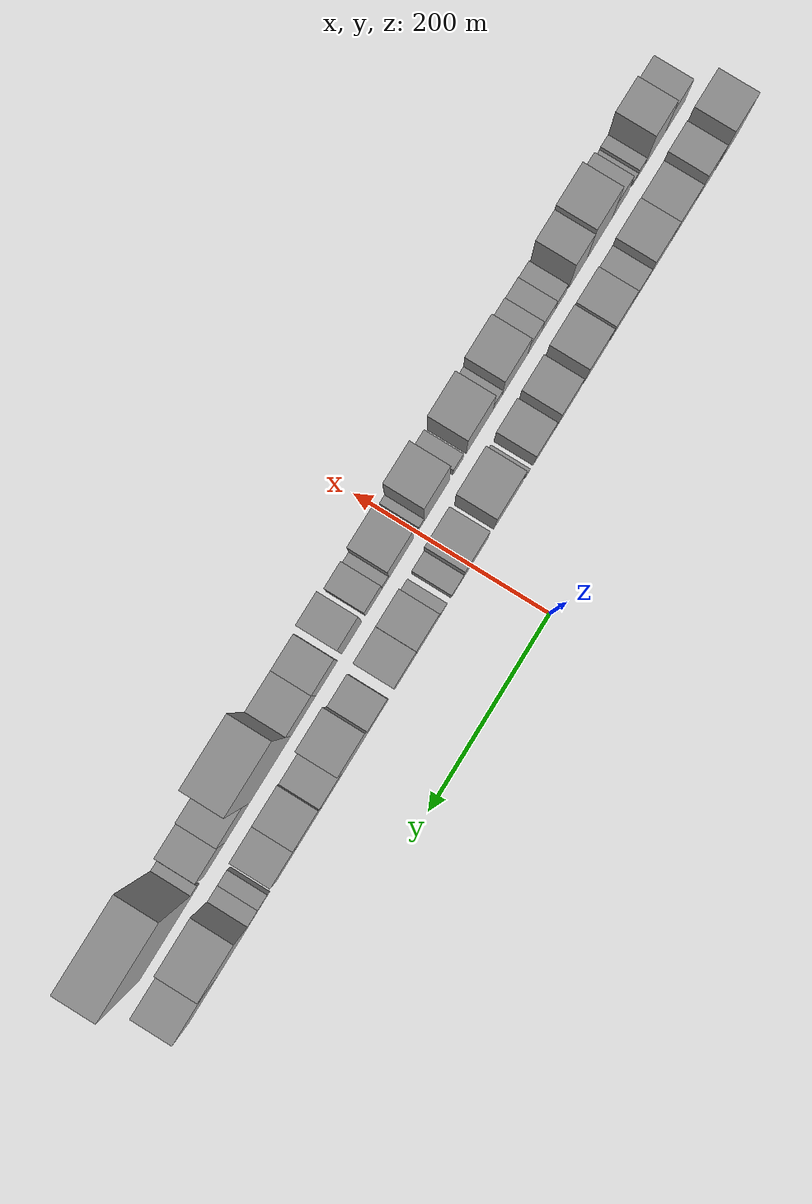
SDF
<sdf version="1.6">
 <world name="default">
  <scene>
   <sky><clouds><speed>12</speed></clouds></sky>
   <ambient>0.4 0.4 0.4 1</ambient>
   <background>0.7 0.7 0.7 1</background>
   <shadows>1</shadows>
  </scene>
  <gravity>0 0 -9.8066</gravity>
  <magnetic_field>6e-06 2.3e-05 -4.2e-05</magnetic_field>
  <physics default="0" name="default_physics" type="ode">
   <ode>
    <solver>
     <type>quick</type>
     <iters>10</iters>
     <sor>1.0</sor>
     <use_dynamic_moi_rescaling>0</use_dynamic_moi_rescaling>
    </solver>
    <constraints>
     <cfm>0</cfm>
     <erp>0.2</erp>
     <contact_max_correcting_vel>100</contact_max_correcting_vel>
     <contact_surface_layer>0.001</contact_surface_layer>
    </constraints>
   </ode>
   <max_step_size>0.004</max_step_size>
   <real_time_factor>1</real_time_factor>
   <real_time_update_rate>250</real_time_update_rate>
  </physics>
  <light name="sun" type="directional">
   <pose>0 0 10 0 0 0</pose>
   <diffuse>0.8 0.8 0.8 1</diffuse>
   <specular>0.2 0.2 0.2 1</specular>
   <attenuation>
    <range>1000</range>
    <constant>0.9</constant>
    <linear>0.01</linear>
    <quadratic>0.001</quadratic>
   </attenuation>
   <direction>-0.5 0.1 -0.9</direction>
  </light>
  <model name="building_1">
   <static>1</static>
   <pose>100.0000 -430.5518 0 0.000000 0.000000 0.000000</pose>
   <link name="link">
    <pose>0 0 58.50 0 0 0</pose>
    <collision name="collision"><geometry><box><size>40.0000 38.8965 117.0000</size></box></geometry></collision>
    <visual name="visual">
     <cast_shadows>0</cast_shadows>
     <geometry><box><size>40.0000 38.8965 117.0000</size></box></geometry>
     <material>
      <script>
       <uri>model://grey_wall/materials/scripts</uri>
       <uri>model://grey_wall/materials/textures</uri>
       <name>vrc/grey_wall</name>
      </script>
     </material>
    </visual>
   </link>
  </model>
  <model name="building_2">
   <static>1</static>
   <pose>100.0000 -390.5887 0 0.000000 0.000000 0.000000</pose>
   <link name="link">
    <pose>0 0 46.50 0 0 0</pose>
    <collision name="collision"><geometry><box><size>40.0000 31.0297 93.0000</size></box></geometry></collision>
    <visual name="visual">
     <cast_shadows>0</cast_shadows>
     <geometry><box><size>40.0000 31.0297 93.0000</size></box></geometry>
     <material>
      <script>
       <uri>model://grey_wall/materials/scripts</uri>
       <uri>model://grey_wall/materials/textures</uri>
       <name>vrc/grey_wall</name>
      </script>
     </material>
    </visual>
   </link>
  </model>
  <model name="building_3">
   <static>1</static>
   <pose>100.0000 -355.3062 0 0.000000 0.000000 0.000000</pose>
   <link name="link">
    <pose>0 0 33.00 0 0 0</pose>
    <collision name="collision"><geometry><box><size>40.0000 39.5352 66.0000</size></box></geometry></collision>
    <visual name="visual">
     <cast_shadows>0</cast_shadows>
     <geometry><box><size>40.0000 39.5352 66.0000</size></box></geometry>
     <material>
      <script>
       <uri>model://grey_wall/materials/scripts</uri>
       <uri>model://grey_wall/materials/textures</uri>
       <name>vrc/grey_wall</name>
      </script>
     </material>
    </visual>
   </link>
  </model>
  <model name="building_4">
   <static>1</static>
   <pose>100.0000 -315.1761 0 0.000000 0.000000 0.000000</pose>
   <link name="link">
    <pose>0 0 36.00 0 0 0</pose>
    <collision name="collision"><geometry><box><size>40.0000 40.7250 72.0000</size></box></geometry></collision>
    <visual name="visual">
     <cast_shadows>0</cast_shadows>
     <geometry><box><size>40.0000 40.7250 72.0000</size></box></geometry>
     <material>
      <script>
       <uri>model://grey_wall/materials/scripts</uri>
       <uri>model://grey_wall/materials/textures</uri>
       <name>vrc/grey_wall</name>
      </script>
     </material>
    </visual>
   </link>
  </model>
  <model name="building_5">
   <static>1</static>
   <pose>100.0000 -281.6589 0 0.000000 0.000000 0.000000</pose>
   <link name="link">
    <pose>0 0 22.50 0 0 0</pose>
    <collision name="collision"><geometry><box><size>40.0000 26.3094 45.0000</size></box></geometry></collision>
    <visual name="visual">
     <cast_shadows>0</cast_shadows>
     <geometry><box><size>40.0000 26.3094 45.0000</size></box></geometry>
     <material>
      <script>
       <uri>model://grey_wall/materials/scripts</uri>
       <uri>model://grey_wall/materials/textures</uri>
       <name>vrc/grey_wall</name>
      </script>
     </material>
    </visual>
   </link>
  </model>
  <model name="building_6">
   <static>1</static>
   <pose>100.0000 -250.3222 0 0.000000 0.000000 0.000000</pose>
   <link name="link">
    <pose>0 0 31.50 0 0 0</pose>
    <collision name="collision"><geometry><box><size>40.0000 36.3640 63.0000</size></box></geometry></collision>
    <visual name="visual">
     <cast_shadows>0</cast_shadows>
     <geometry><box><size>40.0000 36.3640 63.0000</size></box></geometry>
     <material>
      <script>
       <uri>model://grey_wall/materials/scripts</uri>
       <uri>model://grey_wall/materials/textures</uri>
       <name>vrc/grey_wall</name>
      </script>
     </material>
    </visual>
   </link>
  </model>
  <model name="building_7">
   <static>1</static>
   <pose>100.0000 -207.7540 0 0.000000 0.000000 0.000000</pose>
   <link name="link">
    <pose>0 0 36.00 0 0 0</pose>
    <collision name="collision"><geometry><box><size>40.0000 40.7725 72.0000</size></box></geometry></collision>
    <visual name="visual">
     <cast_shadows>0</cast_shadows>
     <geometry><box><size>40.0000 40.7725 72.0000</size></box></geometry>
     <material>
      <script>
       <uri>model://grey_wall/materials/scripts</uri>
       <uri>model://grey_wall/materials/textures</uri>
       <name>vrc/grey_wall</name>
      </script>
     </material>
    </visual>
   </link>
  </model>
  <model name="building_8">
   <static>1</static>
   <pose>100.0000 -161.3711 0 0.000000 0.000000 0.000000</pose>
   <link name="link">
    <pose>0 0 33.00 0 0 0</pose>
    <collision name="collision"><geometry><box><size>40.0000 35.9933 66.0000</size></box></geometry></collision>
    <visual name="visual">
     <cast_shadows>0</cast_shadows>
     <geometry><box><size>40.0000 35.9933 66.0000</size></box></geometry>
     <material>
      <script>
       <uri>model://grey_wall/materials/scripts</uri>
       <uri>model://grey_wall/materials/textures</uri>
       <name>vrc/grey_wall</name>
      </script>
     </material>
    </visual>
   </link>
  </model>
  <model name="building_9">
   <static>1</static>
   <pose>100.0000 -140.2287 0 0.000000 0.000000 0.000000</pose>
   <link name="link">
    <pose>0 0 7.50 0 0 0</pose>
    <collision name="collision"><geometry><box><size>40.0000 6.2915 15.0000</size></box></geometry></collision>
    <visual name="visual">
     <cast_shadows>0</cast_shadows>
     <geometry><box><size>40.0000 6.2915 15.0000</size></box></geometry>
     <material>
      <script>
       <uri>model://grey_wall/materials/scripts</uri>
       <uri>model://grey_wall/materials/textures</uri>
       <name>vrc/grey_wall</name>
      </script>
     </material>
    </visual>
   </link>
  </model>
  <model name="building_10">
   <static>1</static>
   <pose>100.0000 -119.8981 0 0.000000 0.000000 0.000000</pose>
   <link name="link">
    <pose>0 0 30.00 0 0 0</pose>
    <collision name="collision"><geometry><box><size>40.0000 34.3697 60.0000</size></box></geometry></collision>
    <visual name="visual">
     <cast_shadows>0</cast_shadows>
     <geometry><box><size>40.0000 34.3697 60.0000</size></box></geometry>
     <material>
      <script>
       <uri>model://grey_wall/materials/scripts</uri>
       <uri>model://grey_wall/materials/textures</uri>
       <name>vrc/grey_wall</name>
      </script>
     </material>
    </visual>
   </link>
  </model>
  <model name="building_11">
   <static>1</static>
   <pose>100.0000 -92.5757 0 0.000000 0.000000 0.000000</pose>
   <link name="link">
    <pose>0 0 9.00 0 0 0</pose>
    <collision name="collision"><geometry><box><size>40.0000 8.2751 18.0000</size></box></geometry></collision>
    <visual name="visual">
     <cast_shadows>0</cast_shadows>
     <geometry><box><size>40.0000 8.2751 18.0000</size></box></geometry>
     <material>
      <script>
       <uri>model://grey_wall/materials/scripts</uri>
       <uri>model://grey_wall/materials/textures</uri>
       <name>vrc/grey_wall</name>
      </script>
     </material>
    </visual>
   </link>
  </model>
  <model name="building_12">
   <static>1</static>
   <pose>100.0000 -60.7736 0 0.000000 0.000000 0.000000</pose>
   <link name="link">
    <pose>0 0 45.00 0 0 0</pose>
    <collision name="collision"><geometry><box><size>40.0000 47.3291 90.0000</size></box></geometry></collision>
    <visual name="visual">
     <cast_shadows>0</cast_shadows>
     <geometry><box><size>40.0000 47.3291 90.0000</size></box></geometry>
     <material>
      <script>
       <uri>model://grey_wall/materials/scripts</uri>
       <uri>model://grey_wall/materials/textures</uri>
       <name>vrc/grey_wall</name>
      </script>
     </material>
    </visual>
   </link>
  </model>
  <model name="building_13">
   <static>1</static>
   <pose>100.0000 -7.1644 0 0.000000 0.000000 0.000000</pose>
   <link name="link">
    <pose>0 0 37.50 0 0 0</pose>
    <collision name="collision"><geometry><box><size>40.0000 39.8892 75.0000</size></box></geometry></collision>
    <visual name="visual">
     <cast_shadows>0</cast_shadows>
     <geometry><box><size>40.0000 39.8892 75.0000</size></box></geometry>
     <material>
      <script>
       <uri>model://grey_wall/materials/scripts</uri>
       <uri>model://grey_wall/materials/textures</uri>
       <name>vrc/grey_wall</name>
      </script>
     </material>
    </visual>
   </link>
  </model>
  <model name="building_14">
   <static>1</static>
   <pose>100.0000 23.0275 0 0.000000 0.000000 0.000000</pose>
   <link name="link">
    <pose>0 0 18.00 0 0 0</pose>
    <collision name="collision"><geometry><box><size>40.0000 20.4946 36.0000</size></box></geometry></collision>
    <visual name="visual">
     <cast_shadows>0</cast_shadows>
     <geometry><box><size>40.0000 20.4946 36.0000</size></box></geometry>
     <material>
      <script>
       <uri>model://grey_wall/materials/scripts</uri>
       <uri>model://grey_wall/materials/textures</uri>
       <name>vrc/grey_wall</name>
      </script>
     </material>
    </visual>
   </link>
  </model>
  <model name="building_15">
   <static>1</static>
   <pose>100.0000 46.6886 0 0.000000 0.000000 0.000000</pose>
   <link name="link">
    <pose>0 0 13.50 0 0 0</pose>
    <collision name="collision"><geometry><box><size>40.0000 12.8277 27.0000</size></box></geometry></collision>
    <visual name="visual">
     <cast_shadows>0</cast_shadows>
     <geometry><box><size>40.0000 12.8277 27.0000</size></box></geometry>
     <material>
      <script>
       <uri>model://grey_wall/materials/scripts</uri>
       <uri>model://grey_wall/materials/textures</uri>
       <name>vrc/grey_wall</name>
      </script>
     </material>
    </visual>
   </link>
  </model>
  <model name="building_16">
   <static>1</static>
   <pose>100.0000 71.5648 0 0.000000 0.000000 0.000000</pose>
   <link name="link">
    <pose>0 0 34.50 0 0 0</pose>
    <collision name="collision"><geometry><box><size>40.0000 36.9246 69.0000</size></box></geometry></collision>
    <visual name="visual">
     <cast_shadows>0</cast_shadows>
     <geometry><box><size>40.0000 36.9246 69.0000</size></box></geometry>
     <material>
      <script>
       <uri>model://grey_wall/materials/scripts</uri>
       <uri>model://grey_wall/materials/textures</uri>
       <name>vrc/grey_wall</name>
      </script>
     </material>
    </visual>
   </link>
  </model>
  <model name="building_17">
   <static>1</static>
   <pose>100.0000 108.0076 0 0.000000 0.000000 0.000000</pose>
   <link name="link">
    <pose>0 0 33.00 0 0 0</pose>
    <collision name="collision"><geometry><box><size>40.0000 35.9610 66.0000</size></box></geometry></collision>
    <visual name="visual">
     <cast_shadows>0</cast_shadows>
     <geometry><box><size>40.0000 35.9610 66.0000</size></box></geometry>
     <material>
      <script>
       <uri>model://grey_wall/materials/scripts</uri>
       <uri>model://grey_wall/materials/textures</uri>
       <name>vrc/grey_wall</name>
      </script>
     </material>
    </visual>
   </link>
  </model>
  <model name="building_18">
   <static>1</static>
   <pose>100.0000 152.0862 0 0.000000 0.000000 0.000000</pose>
   <link name="link">
    <pose>0 0 27.00 0 0 0</pose>
    <collision name="collision"><geometry><box><size>40.0000 32.1962 54.0000</size></box></geometry></collision>
    <visual name="visual">
     <cast_shadows>0</cast_shadows>
     <geometry><box><size>40.0000 32.1962 54.0000</size></box></geometry>
     <material>
      <script>
       <uri>model://grey_wall/materials/scripts</uri>
       <uri>model://grey_wall/materials/textures</uri>
       <name>vrc/grey_wall</name>
      </script>
     </material>
    </visual>
   </link>
  </model>
  <model name="building_19">
   <static>1</static>
   <pose>100.0000 189.0848 0 0.000000 0.000000 0.000000</pose>
   <link name="link">
    <pose>0 0 61.50 0 0 0</pose>
    <collision name="collision"><geometry><box><size>40.0000 41.8011 123.0000</size></box></geometry></collision>
    <visual name="visual">
     <cast_shadows>0</cast_shadows>
     <geometry><box><size>40.0000 41.8011 123.0000</size></box></geometry>
     <material>
      <script>
       <uri>model://grey_wall/materials/scripts</uri>
       <uri>model://grey_wall/materials/textures</uri>
       <name>vrc/grey_wall</name>
      </script>
     </material>
    </visual>
   </link>
  </model>
  <model name="building_20">
   <static>1</static>
   <pose>100.0000 226.8184 0 0.000000 0.000000 0.000000</pose>
   <link name="link">
    <pose>0 0 28.50 0 0 0</pose>
    <collision name="collision"><geometry><box><size>40.0000 33.6662 57.0000</size></box></geometry></collision>
    <visual name="visual">
     <cast_shadows>0</cast_shadows>
     <geometry><box><size>40.0000 33.6662 57.0000</size></box></geometry>
     <material>
      <script>
       <uri>model://grey_wall/materials/scripts</uri>
       <uri>model://grey_wall/materials/textures</uri>
       <name>vrc/grey_wall</name>
      </script>
     </material>
    </visual>
   </link>
  </model>
  <model name="building_21">
   <static>1</static>
   <pose>100.0000 263.5719 0 0.000000 0.000000 0.000000</pose>
   <link name="link">
    <pose>0 0 36.00 0 0 0</pose>
    <collision name="collision"><geometry><box><size>40.0000 39.8407 72.0000</size></box></geometry></collision>
    <visual name="visual">
     <cast_shadows>0</cast_shadows>
     <geometry><box><size>40.0000 39.8407 72.0000</size></box></geometry>
     <material>
      <script>
       <uri>model://grey_wall/materials/scripts</uri>
       <uri>model://grey_wall/materials/textures</uri>
       <name>vrc/grey_wall</name>
      </script>
     </material>
    </visual>
   </link>
  </model>
  <model name="building_22">
   <static>1</static>
   <pose>100.0000 301.2652 0 0.000000 0.000000 0.000000</pose>
   <link name="link">
    <pose>0 0 34.50 0 0 0</pose>
    <collision name="collision"><geometry><box><size>40.0000 35.5461 69.0000</size></box></geometry></collision>
    <visual name="visual">
     <cast_shadows>0</cast_shadows>
     <geometry><box><size>40.0000 35.5461 69.0000</size></box></geometry>
     <material>
      <script>
       <uri>model://grey_wall/materials/scripts</uri>
       <uri>model://grey_wall/materials/textures</uri>
       <name>vrc/grey_wall</name>
      </script>
     </material>
    </visual>
   </link>
  </model>
  <model name="building_23">
   <static>1</static>
   <pose>100.0000 336.7162 0 0.000000 0.000000 0.000000</pose>
   <link name="link">
    <pose>0 0 15.00 0 0 0</pose>
    <collision name="collision"><geometry><box><size>40.0000 15.3558 30.0000</size></box></geometry></collision>
    <visual name="visual">
     <cast_shadows>0</cast_shadows>
     <geometry><box><size>40.0000 15.3558 30.0000</size></box></geometry>
     <material>
      <script>
       <uri>model://grey_wall/materials/scripts</uri>
       <uri>model://grey_wall/materials/textures</uri>
       <name>vrc/grey_wall</name>
      </script>
     </material>
    </visual>
   </link>
  </model>
  <model name="building_24">
   <static>1</static>
   <pose>100.0000 352.4193 0 0.000000 0.000000 0.000000</pose>
   <link name="link">
    <pose>0 0 15.00 0 0 0</pose>
    <collision name="collision"><geometry><box><size>40.0000 16.0504 30.0000</size></box></geometry></collision>
    <visual name="visual">
     <cast_shadows>0</cast_shadows>
     <geometry><box><size>40.0000 16.0504 30.0000</size></box></geometry>
     <material>
      <script>
       <uri>model://grey_wall/materials/scripts</uri>
       <uri>model://grey_wall/materials/textures</uri>
       <name>vrc/grey_wall</name>
      </script>
     </material>
    </visual>
   </link>
  </model>
  <model name="building_25">
   <static>1</static>
   <pose>100.0000 386.9694 0 0.000000 0.000000 0.000000</pose>
   <link name="link">
    <pose>0 0 75.00 0 0 0</pose>
    <collision name="collision"><geometry><box><size>40.0000 53.0498 150.0000</size></box></geometry></collision>
    <visual name="visual">
     <cast_shadows>0</cast_shadows>
     <geometry><box><size>40.0000 53.0498 150.0000</size></box></geometry>
     <material>
      <script>
       <uri>model://grey_wall/materials/scripts</uri>
       <uri>model://grey_wall/materials/textures</uri>
       <name>vrc/grey_wall</name>
      </script>
     </material>
    </visual>
   </link>
  </model>
  <model name="building_26">
   <static>1</static>
   <pose>100.0000 436.2001 0 0.000000 0.000000 0.000000</pose>
   <link name="link">
    <pose>0 0 57.00 0 0 0</pose>
    <collision name="collision"><geometry><box><size>40.0000 45.4117 114.0000</size></box></geometry></collision>
    <visual name="visual">
     <cast_shadows>0</cast_shadows>
     <geometry><box><size>40.0000 45.4117 114.0000</size></box></geometry>
     <material>
      <script>
       <uri>model://grey_wall/materials/scripts</uri>
       <uri>model://grey_wall/materials/textures</uri>
       <name>vrc/grey_wall</name>
      </script>
     </material>
    </visual>
   </link>
  </model>
  <model name="building_27">
   <static>1</static>
   <pose>155.0000 -433.5572 0 0.000000 0.000000 0.000000</pose>
   <link name="link">
    <pose>0 0 31.50 0 0 0</pose>
    <collision name="collision"><geometry><box><size>40.0000 32.8855 63.0000</size></box></geometry></collision>
    <visual name="visual">
     <cast_shadows>0</cast_shadows>
     <geometry><box><size>40.0000 32.8855 63.0000</size></box></geometry>
     <material>
      <script>
       <uri>model://grey_wall/materials/scripts</uri>
       <uri>model://grey_wall/materials/textures</uri>
       <name>vrc/grey_wall</name>
      </script>
     </material>
    </visual>
   </link>
  </model>
  <model name="building_28">
   <static>1</static>
   <pose>155.0000 -399.0424 0 0.000000 0.000000 0.000000</pose>
   <link name="link">
    <pose>0 0 46.50 0 0 0</pose>
    <collision name="collision"><geometry><box><size>40.0000 36.1441 93.0000</size></box></geometry></collision>
    <visual name="visual">
     <cast_shadows>0</cast_shadows>
     <geometry><box><size>40.0000 36.1441 93.0000</size></box></geometry>
     <material>
      <script>
       <uri>model://grey_wall/materials/scripts</uri>
       <uri>model://grey_wall/materials/textures</uri>
       <name>vrc/grey_wall</name>
      </script>
     </material>
    </visual>
   </link>
  </model>
  <model name="building_29">
   <static>1</static>
   <pose>155.0000 -374.6054 0 0.000000 0.000000 0.000000</pose>
   <link name="link">
    <pose>0 0 13.50 0 0 0</pose>
    <collision name="collision"><geometry><box><size>40.0000 12.7298 27.0000</size></box></geometry></collision>
    <visual name="visual">
     <cast_shadows>0</cast_shadows>
     <geometry><box><size>40.0000 12.7298 27.0000</size></box></geometry>
     <material>
      <script>
       <uri>model://grey_wall/materials/scripts</uri>
       <uri>model://grey_wall/materials/textures</uri>
       <name>vrc/grey_wall</name>
      </script>
     </material>
    </visual>
   </link>
  </model>
  <model name="building_30">
   <static>1</static>
   <pose>155.0000 -363.9505 0 0.000000 0.000000 0.000000</pose>
   <link name="link">
    <pose>0 0 9.00 0 0 0</pose>
    <collision name="collision"><geometry><box><size>40.0000 8.5799 18.0000</size></box></geometry></collision>
    <visual name="visual">
     <cast_shadows>0</cast_shadows>
     <geometry><box><size>40.0000 8.5799 18.0000</size></box></geometry>
     <material>
      <script>
       <uri>model://grey_wall/materials/scripts</uri>
       <uri>model://grey_wall/materials/textures</uri>
       <name>vrc/grey_wall</name>
      </script>
     </material>
    </visual>
   </link>
  </model>
  <model name="building_31">
   <static>1</static>
   <pose>155.0000 -339.7884 0 0.000000 0.000000 0.000000</pose>
   <link name="link">
    <pose>0 0 27.00 0 0 0</pose>
    <collision name="collision"><geometry><box><size>40.0000 27.7443 54.0000</size></box></geometry></collision>
    <visual name="visual">
     <cast_shadows>0</cast_shadows>
     <geometry><box><size>40.0000 27.7443 54.0000</size></box></geometry>
     <material>
      <script>
       <uri>model://grey_wall/materials/scripts</uri>
       <uri>model://grey_wall/materials/textures</uri>
       <name>vrc/grey_wall</name>
      </script>
     </material>
    </visual>
   </link>
  </model>
  <model name="building_32">
   <static>1</static>
   <pose>155.0000 -304.5510 0 0.000000 0.000000 0.000000</pose>
   <link name="link">
    <pose>0 0 54.00 0 0 0</pose>
    <collision name="collision"><geometry><box><size>40.0000 42.7304 108.0000</size></box></geometry></collision>
    <visual name="visual">
     <cast_shadows>0</cast_shadows>
     <geometry><box><size>40.0000 42.7304 108.0000</size></box></geometry>
     <material>
      <script>
       <uri>model://grey_wall/materials/scripts</uri>
       <uri>model://grey_wall/materials/textures</uri>
       <name>vrc/grey_wall</name>
      </script>
     </material>
    </visual>
   </link>
  </model>
  <model name="building_33">
   <static>1</static>
   <pose>155.0000 -267.7677 0 0.000000 0.000000 0.000000</pose>
   <link name="link">
    <pose>0 0 46.50 0 0 0</pose>
    <collision name="collision"><geometry><box><size>40.0000 30.8363 93.0000</size></box></geometry></collision>
    <visual name="visual">
     <cast_shadows>0</cast_shadows>
     <geometry><box><size>40.0000 30.8363 93.0000</size></box></geometry>
     <material>
      <script>
       <uri>model://grey_wall/materials/scripts</uri>
       <uri>model://grey_wall/materials/textures</uri>
       <name>vrc/grey_wall</name>
      </script>
     </material>
    </visual>
   </link>
  </model>
  <model name="building_34">
   <static>1</static>
   <pose>155.0000 -239.1030 0 0.000000 0.000000 0.000000</pose>
   <link name="link">
    <pose>0 0 16.50 0 0 0</pose>
    <collision name="collision"><geometry><box><size>40.0000 18.4930 33.0000</size></box></geometry></collision>
    <visual name="visual">
     <cast_shadows>0</cast_shadows>
     <geometry><box><size>40.0000 18.4930 33.0000</size></box></geometry>
     <material>
      <script>
       <uri>model://grey_wall/materials/scripts</uri>
       <uri>model://grey_wall/materials/textures</uri>
       <name>vrc/grey_wall</name>
      </script>
     </material>
    </visual>
   </link>
  </model>
  <model name="building_35">
   <static>1</static>
   <pose>155.0000 -218.6538 0 0.000000 0.000000 0.000000</pose>
   <link name="link">
    <pose>0 0 19.50 0 0 0</pose>
    <collision name="collision"><geometry><box><size>40.0000 22.4055 39.0000</size></box></geometry></collision>
    <visual name="visual">
     <cast_shadows>0</cast_shadows>
     <geometry><box><size>40.0000 22.4055 39.0000</size></box></geometry>
     <material>
      <script>
       <uri>model://grey_wall/materials/scripts</uri>
       <uri>model://grey_wall/materials/textures</uri>
       <name>vrc/grey_wall</name>
      </script>
     </material>
    </visual>
   </link>
  </model>
  <model name="building_36">
   <static>1</static>
   <pose>155.0000 -195.7575 0 0.000000 0.000000 0.000000</pose>
   <link name="link">
    <pose>0 0 22.50 0 0 0</pose>
    <collision name="collision"><geometry><box><size>40.0000 23.3871 45.0000</size></box></geometry></collision>
    <visual name="visual">
     <cast_shadows>0</cast_shadows>
     <geometry><box><size>40.0000 23.3871 45.0000</size></box></geometry>
     <material>
      <script>
       <uri>model://grey_wall/materials/scripts</uri>
       <uri>model://grey_wall/materials/textures</uri>
       <name>vrc/grey_wall</name>
      </script>
     </material>
    </visual>
   </link>
  </model>
  <model name="building_37">
   <static>1</static>
   <pose>155.0000 -162.3110 0 0.000000 0.000000 0.000000</pose>
   <link name="link">
    <pose>0 0 37.50 0 0 0</pose>
    <collision name="collision"><geometry><box><size>40.0000 43.5059 75.0000</size></box></geometry></collision>
    <visual name="visual">
     <cast_shadows>0</cast_shadows>
     <geometry><box><size>40.0000 43.5059 75.0000</size></box></geometry>
     <material>
      <script>
       <uri>model://grey_wall/materials/scripts</uri>
       <uri>model://grey_wall/materials/textures</uri>
       <name>vrc/grey_wall</name>
      </script>
     </material>
    </visual>
   </link>
  </model>
  <model name="building_38">
   <static>1</static>
   <pose>155.0000 -133.0314 0 0.000000 0.000000 0.000000</pose>
   <link name="link">
    <pose>0 0 15.00 0 0 0</pose>
    <collision name="collision"><geometry><box><size>40.0000 15.0533 30.0000</size></box></geometry></collision>
    <visual name="visual">
     <cast_shadows>0</cast_shadows>
     <geometry><box><size>40.0000 15.0533 30.0000</size></box></geometry>
     <material>
      <script>
       <uri>model://grey_wall/materials/scripts</uri>
       <uri>model://grey_wall/materials/textures</uri>
       <name>vrc/grey_wall</name>
      </script>
     </material>
    </visual>
   </link>
  </model>
  <model name="building_39">
   <static>1</static>
   <pose>155.0000 -103.1621 0 0.000000 0.000000 0.000000</pose>
   <link name="link">
    <pose>0 0 42.00 0 0 0</pose>
    <collision name="collision"><geometry><box><size>40.0000 44.6851 84.0000</size></box></geometry></collision>
    <visual name="visual">
     <cast_shadows>0</cast_shadows>
     <geometry><box><size>40.0000 44.6851 84.0000</size></box></geometry>
     <material>
      <script>
       <uri>model://grey_wall/materials/scripts</uri>
       <uri>model://grey_wall/materials/textures</uri>
       <name>vrc/grey_wall</name>
      </script>
     </material>
    </visual>
   </link>
  </model>
  <model name="building_40">
   <static>1</static>
   <pose>155.0000 -67.3736 0 0.000000 0.000000 0.000000</pose>
   <link name="link">
    <pose>0 0 16.50 0 0 0</pose>
    <collision name="collision"><geometry><box><size>40.0000 16.8920 33.0000</size></box></geometry></collision>
    <visual name="visual">
     <cast_shadows>0</cast_shadows>
     <geometry><box><size>40.0000 16.8920 33.0000</size></box></geometry>
     <material>
      <script>
       <uri>model://grey_wall/materials/scripts</uri>
       <uri>model://grey_wall/materials/textures</uri>
       <name>vrc/grey_wall</name>
      </script>
     </material>
    </visual>
   </link>
  </model>
  <model name="building_41">
   <static>1</static>
   <pose>155.0000 -32.0951 0 0.000000 0.000000 0.000000</pose>
   <link name="link">
    <pose>0 0 54.00 0 0 0</pose>
    <collision name="collision"><geometry><box><size>40.0000 41.6651 108.0000</size></box></geometry></collision>
    <visual name="visual">
     <cast_shadows>0</cast_shadows>
     <geometry><box><size>40.0000 41.6651 108.0000</size></box></geometry>
     <material>
      <script>
       <uri>model://grey_wall/materials/scripts</uri>
       <uri>model://grey_wall/materials/textures</uri>
       <name>vrc/grey_wall</name>
      </script>
     </material>
    </visual>
   </link>
  </model>
  <model name="building_42">
   <static>1</static>
   <pose>155.0000 -6.8594 0 0.000000 0.000000 0.000000</pose>
   <link name="link">
    <pose>0 0 10.50 0 0 0</pose>
    <collision name="collision"><geometry><box><size>40.0000 8.8063 21.0000</size></box></geometry></collision>
    <visual name="visual">
     <cast_shadows>0</cast_shadows>
     <geometry><box><size>40.0000 8.8063 21.0000</size></box></geometry>
     <material>
      <script>
       <uri>model://grey_wall/materials/scripts</uri>
       <uri>model://grey_wall/materials/textures</uri>
       <name>vrc/grey_wall</name>
      </script>
     </material>
    </visual>
   </link>
  </model>
  <model name="building_43">
   <static>1</static>
   <pose>155.0000 26.7637 0 0.000000 0.000000 0.000000</pose>
   <link name="link">
    <pose>0 0 36.00 0 0 0</pose>
    <collision name="collision"><geometry><box><size>40.0000 40.4399 72.0000</size></box></geometry></collision>
    <visual name="visual">
     <cast_shadows>0</cast_shadows>
     <geometry><box><size>40.0000 40.4399 72.0000</size></box></geometry>
     <material>
      <script>
       <uri>model://grey_wall/materials/scripts</uri>
       <uri>model://grey_wall/materials/textures</uri>
       <name>vrc/grey_wall</name>
      </script>
     </material>
    </visual>
   </link>
  </model>
  <model name="building_44">
   <static>1</static>
   <pose>155.0000 52.6036 0 0.000000 0.000000 0.000000</pose>
   <link name="link">
    <pose>0 0 12.00 0 0 0</pose>
    <collision name="collision"><geometry><box><size>40.0000 11.2398 24.0000</size></box></geometry></collision>
    <visual name="visual">
     <cast_shadows>0</cast_shadows>
     <geometry><box><size>40.0000 11.2398 24.0000</size></box></geometry>
     <material>
      <script>
       <uri>model://grey_wall/materials/scripts</uri>
       <uri>model://grey_wall/materials/textures</uri>
       <name>vrc/grey_wall</name>
      </script>
     </material>
    </visual>
   </link>
  </model>
  <model name="building_45">
   <static>1</static>
   <pose>155.0000 71.7972 0 0.000000 0.000000 0.000000</pose>
   <link name="link">
    <pose>0 0 24.00 0 0 0</pose>
    <collision name="collision"><geometry><box><size>40.0000 27.1474 48.0000</size></box></geometry></collision>
    <visual name="visual">
     <cast_shadows>0</cast_shadows>
     <geometry><box><size>40.0000 27.1474 48.0000</size></box></geometry>
     <material>
      <script>
       <uri>model://grey_wall/materials/scripts</uri>
       <uri>model://grey_wall/materials/textures</uri>
       <name>vrc/grey_wall</name>
      </script>
     </material>
    </visual>
   </link>
  </model>
  <model name="building_46">
   <static>1</static>
   <pose>155.0000 107.7338 0 0.000000 0.000000 0.000000</pose>
   <link name="link">
    <pose>0 0 49.50 0 0 0</pose>
    <collision name="collision"><geometry><box><size>40.0000 32.7256 99.0000</size></box></geometry></collision>
    <visual name="visual">
     <cast_shadows>0</cast_shadows>
     <geometry><box><size>40.0000 32.7256 99.0000</size></box></geometry>
     <material>
      <script>
       <uri>model://grey_wall/materials/scripts</uri>
       <uri>model://grey_wall/materials/textures</uri>
       <name>vrc/grey_wall</name>
      </script>
     </material>
    </visual>
   </link>
  </model>
  <model name="building_47">
   <static>1</static>
   <pose>155.0000 149.0191 0 0.000000 0.000000 0.000000</pose>
   <link name="link">
    <pose>0 0 34.50 0 0 0</pose>
    <collision name="collision"><geometry><box><size>40.0000 35.8450 69.0000</size></box></geometry></collision>
    <visual name="visual">
     <cast_shadows>0</cast_shadows>
     <geometry><box><size>40.0000 35.8450 69.0000</size></box></geometry>
     <material>
      <script>
       <uri>model://grey_wall/materials/scripts</uri>
       <uri>model://grey_wall/materials/textures</uri>
       <name>vrc/grey_wall</name>
      </script>
     </material>
    </visual>
   </link>
  </model>
  <model name="building_48">
   <static>1</static>
   <pose>155.0000 187.0254 0 0.000000 0.000000 0.000000</pose>
   <link name="link">
    <pose>0 0 34.50 0 0 0</pose>
    <collision name="collision"><geometry><box><size>40.0000 40.1676 69.0000</size></box></geometry></collision>
    <visual name="visual">
     <cast_shadows>0</cast_shadows>
     <geometry><box><size>40.0000 40.1676 69.0000</size></box></geometry>
     <material>
      <script>
       <uri>model://grey_wall/materials/scripts</uri>
       <uri>model://grey_wall/materials/textures</uri>
       <name>vrc/grey_wall</name>
      </script>
     </material>
    </visual>
   </link>
  </model>
  <model name="building_49">
   <static>1</static>
   <pose>155.0000 241.0025 0 0.000000 0.000000 0.000000</pose>
   <link name="link">
    <pose>0 0 108.00 0 0 0</pose>
    <collision name="collision"><geometry><box><size>40.0000 67.7867 216.0000</size></box></geometry></collision>
    <visual name="visual">
     <cast_shadows>0</cast_shadows>
     <geometry><box><size>40.0000 67.7867 216.0000</size></box></geometry>
     <material>
      <script>
       <uri>model://grey_wall/materials/scripts</uri>
       <uri>model://grey_wall/materials/textures</uri>
       <name>vrc/grey_wall</name>
      </script>
     </material>
    </visual>
   </link>
  </model>
  <model name="building_50">
   <static>1</static>
   <pose>155.0000 294.5876 0 0.000000 0.000000 0.000000</pose>
   <link name="link">
    <pose>0 0 36.00 0 0 0</pose>
    <collision name="collision"><geometry><box><size>40.0000 39.3835 72.0000</size></box></geometry></collision>
    <visual name="visual">
     <cast_shadows>0</cast_shadows>
     <geometry><box><size>40.0000 39.3835 72.0000</size></box></geometry>
     <material>
      <script>
       <uri>model://grey_wall/materials/scripts</uri>
       <uri>model://grey_wall/materials/textures</uri>
       <name>vrc/grey_wall</name>
      </script>
     </material>
    </visual>
   </link>
  </model>
  <model name="building_51">
   <static>1</static>
   <pose>155.0000 331.6645 0 0.000000 0.000000 0.000000</pose>
   <link name="link">
    <pose>0 0 31.50 0 0 0</pose>
    <collision name="collision"><geometry><box><size>40.0000 34.7703 63.0000</size></box></geometry></collision>
    <visual name="visual">
     <cast_shadows>0</cast_shadows>
     <geometry><box><size>40.0000 34.7703 63.0000</size></box></geometry>
     <material>
      <script>
       <uri>model://grey_wall/materials/scripts</uri>
       <uri>model://grey_wall/materials/textures</uri>
       <name>vrc/grey_wall</name>
      </script>
     </material>
    </visual>
   </link>
  </model>
  <model name="building_52">
   <static>1</static>
   <pose>155.0000 360.0884 0 0.000000 0.000000 0.000000</pose>
   <link name="link">
    <pose>0 0 10.50 0 0 0</pose>
    <collision name="collision"><geometry><box><size>40.0000 10.0774 21.0000</size></box></geometry></collision>
    <visual name="visual">
     <cast_shadows>0</cast_shadows>
     <geometry><box><size>40.0000 10.0774 21.0000</size></box></geometry>
     <material>
      <script>
       <uri>model://grey_wall/materials/scripts</uri>
       <uri>model://grey_wall/materials/textures</uri>
       <name>vrc/grey_wall</name>
      </script>
     </material>
    </visual>
   </link>
  </model>
  <model name="building_53">
   <static>1</static>
   <pose>155.0000 408.8448 0 0.000000 0.000000 0.000000</pose>
   <link name="link">
    <pose>0 0 109.50 0 0 0</pose>
    <collision name="collision"><geometry><box><size>40.0000 87.4353 219.0000</size></box></geometry></collision>
    <visual name="visual">
     <cast_shadows>0</cast_shadows>
     <geometry><box><size>40.0000 87.4353 219.0000</size></box></geometry>
     <material>
      <script>
       <uri>model://grey_wall/materials/scripts</uri>
       <uri>model://grey_wall/materials/textures</uri>
       <name>vrc/grey_wall</name>
      </script>
     </material>
    </visual>
   </link>
  </model>
 </world>
</sdf>
